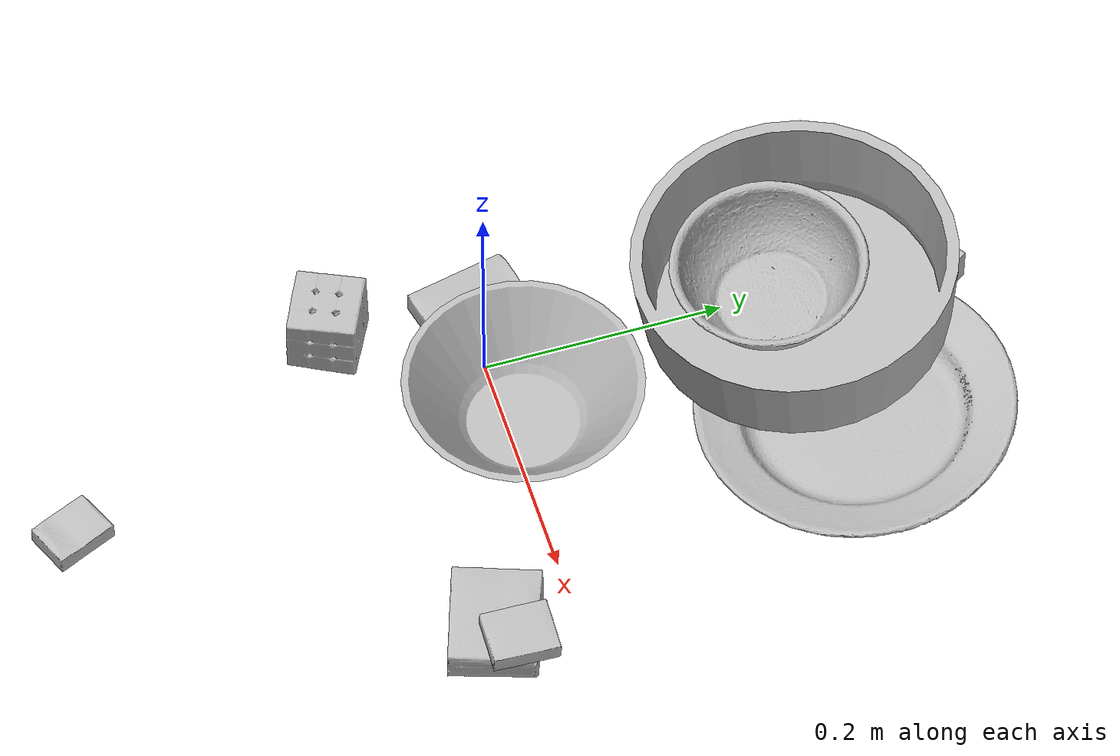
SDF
<sdf version="1.4">
  <world name="default">
    <light name="light1" type="point">
      <pose>0 0 1 0 0 0</pose>
      <diffuse>3 3 3 1</diffuse>
      <specular>3 3 3 1</specular>
    </light>
    <light name="light2" type="point">
      <pose>0 0.5 2 0 0 0</pose>
      <diffuse>1 1 1 1</diffuse>
      <specular>1 1 1 1</specular>
    </light>
    <light name="light3" type="point">
      <pose>0 0.5 2 0 0 0</pose>
      <diffuse>3 3 3 1</diffuse>
      <specular>3 3 3 1</specular>
    </light>
    <scene>
      <ambient>0.7 0.7 0.7</ambient>
    </scene>
    <model name="box1">
      <link name="link_box1">
        <collision name="default">
          <geometry>
            <mesh>
              <uri>model://jenga/collision_meshes/collision.obj</uri>
              <scale>1.0 1.0 1.0</scale>
            </mesh>
          </geometry>
          <surface>
            <friction>
              <ode>
                <mu>0.5</mu>
                <mu2>0.5</mu2>
              </ode>
            </friction>
          <contact>
        <ode>
            <max_vel>0</max_vel>
            <min_depth>0.0001</min_depth>
            <kp>1e8</kp>
        </ode>
    </contact></surface>
        </collision>
        <visual name="default">
          <geometry>
            <mesh>
              <uri>model://jenga/visual_meshes/visual.dae</uri>
              <scale>1.0 1.0 1.0</scale>
            </mesh>
          </geometry>
        </visual>
        <inertial>
          <mass>0.2830650806427002</mass>
          <pose>-2.502855807051674e-07 -0.00010250010382151231 -4.0923401684267446e-05 0.0 -7.34215461761844e-07 0.0</pose>
          <inertia>
            <ixx>7.833097e-05</ixx>
            <iyy>0.0005307686</iyy>
            <izz>0.0005666406</izz>
            <ixy>0</ixy>
            <ixz>0</ixz>
            <iyz>0</iyz>
          </inertia>
        </inertial>
      </link>
      <pose>-0.023632235825061798 0.3398517072200775 0.014995802193880081 0.0003450398150952245 2.04472453427092e-05 -2.5902560507299723</pose>
    </model>
    <model name="box11">
      <link name="link_box11">
        <collision name="default">
          <geometry>
            <mesh>
              <uri>model://cracker_box/collision_meshes/collision.obj</uri>
              <scale>0.25 0.25 0.25</scale>
            </mesh>
          </geometry>
          <surface>
            <friction>
              <ode>
                <mu>0.5</mu>
                <mu2>0.5</mu2>
              </ode>
            </friction>
          <contact>
        <ode>
            <max_vel>0</max_vel>
            <min_depth>0.0001</min_depth>
            <kp>1e8</kp>
        </ode>
    </contact></surface>
        </collision>
        <visual name="default">
          <geometry>
            <mesh>
              <uri>model://cracker_box/visual_meshes/visual.dae</uri>
              <scale>0.25 0.25 0.25</scale>
            </mesh>
          </geometry>
        </visual>
        <inertial>
          <mass>0.04137800261378288</mass>
          <pose>0.00023660347505938262 6.358561950037256e-05 -0.0004257383698131889 -0.00031620748486547713 -0.011106488669102847 0.002546795699546287</pose>
          <inertia>
            <ixx>6.577948e-06</ixx>
            <iyy>1.0861484e-05</iyy>
            <izz>1.5500336e-05</izz>
            <ixy>0</ixy>
            <ixz>0</ixz>
            <iyz>0</iyz>
          </inertia>
        </inertial>
      </link>
      <pose>0.06193311884999275 -0.361501008272171 0.009096027351915836 -0.014050579503599347 -0.005016541601754754 1.9679961413041729</pose>
    </model>
    <model name="box2">
      <link name="link_box2">
        <collision name="default">
          <geometry>
            <mesh>
              <uri>model://gelatin_box/collision_meshes/collision.obj</uri>
              <scale>1.0 1.0 1.0</scale>
            </mesh>
          </geometry>
          <surface>
            <friction>
              <ode>
                <mu>0.5</mu>
                <mu2>0.5</mu2>
              </ode>
            </friction>
          <contact>
        <ode>
            <max_vel>0</max_vel>
            <min_depth>0.0001</min_depth>
            <kp>1e8</kp>
        </ode>
    </contact></surface>
        </collision>
        <visual name="default">
          <geometry>
            <mesh>
              <uri>model://gelatin_box/visual_meshes/visual.dae</uri>
              <scale>1.0 1.0 1.0</scale>
            </mesh>
          </geometry>
        </visual>
        <inertial>
          <mass>0.22900472581386566</mass>
          <pose>0.000431961816502735 0.00011156871914863586 -0.0003640321083366871 -0.001050372089182411 -0.004755818223717792 0.016440559471606643</pose>
          <inertia>
            <ixx>0.00016165864</ixx>
            <iyy>0.00011547193</iyy>
            <izz>0.00024608054</izz>
            <ixy>0</ixy>
            <ixz>0</ixz>
            <iyz>0</iyz>
          </inertia>
        </inertial>
      </link>
      <pose>0.24629028141498566 -0.06655800342559814 0.01516831573098898 0.005597462855725351 -0.007304557694946576 1.2197957577293652</pose>
    </model>
    <model name="box21">
      <link name="link_box21">
        <collision name="default">
          <geometry>
            <mesh>
              <uri>model://sugar_box/collision_meshes/collision.obj</uri>
              <scale>0.5 0.5 0.5</scale>
            </mesh>
          </geometry>
          <surface>
            <friction>
              <ode>
                <mu>0.5</mu>
                <mu2>0.5</mu2>
              </ode>
            </friction>
          <contact>
        <ode>
            <max_vel>0</max_vel>
            <min_depth>0.0001</min_depth>
            <kp>1e8</kp>
        </ode>
    </contact></surface>
        </collision>
        <visual name="default">
          <geometry>
            <mesh>
              <uri>model://sugar_box/visual_meshes/visual.dae</uri>
              <scale>0.5 0.5 0.5</scale>
            </mesh>
          </geometry>
        </visual>
        <inertial>
          <mass>0.12271630764007568</mass>
          <pose>0.0005171863595023751 1.924554817378521e-05 -0.00018182404164690524 -0.00040462595111886014 0.0010506636380741379 0.0026153785562511135</pose>
          <inertia>
            <ixx>2.5561721e-05</ixx>
            <iyy>8.262075e-05</iyy>
            <izz>9.890688e-05</izz>
            <ixy>0</ixy>
            <ixz>0</ixz>
            <iyz>0</iyz>
          </inertia>
        </inertial>
      </link>
      <pose>-0.06065485253930092 0.0041307187639176846 0.011399311013519764 0.0007752054400998208 -0.023432578979858197 -1.3462767954312909</pose>
    </model>
    <model name="box3">
      <link name="link_box3">
        <collision name="default">
          <geometry>
            <mesh>
              <uri>model://rubiks_cube/collision_meshes/collision.obj</uri>
              <scale>1.0 1.0 1.0</scale>
            </mesh>
          </geometry>
          <surface>
            <friction>
              <ode>
                <mu>0.5</mu>
                <mu2>0.5</mu2>
              </ode>
            </friction>
          <contact>
        <ode>
            <max_vel>0</max_vel>
            <min_depth>0.0001</min_depth>
            <kp>1e8</kp>
        </ode>
    </contact></surface>
        </collision>
        <visual name="default">
          <geometry>
            <mesh>
              <uri>model://rubiks_cube/visual_meshes/visual.dae</uri>
              <scale>1.0 1.0 1.0</scale>
            </mesh>
          </geometry>
        </visual>
        <inertial>
          <mass>0.16665811836719513</mass>
          <pose>2.6721039830590598e-05 5.256966323941015e-05 -7.264316082000732e-06 -0.05467166844566422 -0.0981397083583286 -0.034457090447706985</pose>
          <inertia>
            <ixx>9.20898e-05</ixx>
            <iyy>9.166034e-05</iyy>
            <izz>9.285292e-05</izz>
            <ixy>0</ixy>
            <ixz>0</ixz>
            <iyz>0</iyz>
          </inertia>
        </inertial>
      </link>
      <pose>-0.06112504377961159 -0.11448453366756439 0.02867893874645233 -5.091263653825798e-06 -1.802098473855213e-06 1.1269691007089666</pose>
    </model>
    <model name="box31">
      <link name="link_box31">
        <collision name="default">
          <geometry>
            <mesh>
              <uri>model://pudding_box/collision_meshes/collision.obj</uri>
              <scale>0.5 0.5 0.5</scale>
            </mesh>
          </geometry>
          <surface>
            <friction>
              <ode>
                <mu>0.5</mu>
                <mu2>0.5</mu2>
              </ode>
            </friction>
          <contact>
        <ode>
            <max_vel>0</max_vel>
            <min_depth>0.0001</min_depth>
            <kp>1e8</kp>
        </ode>
    </contact></surface>
        </collision>
        <visual name="default">
          <geometry>
            <mesh>
              <uri>model://pudding_box/visual_meshes/visual.dae</uri>
              <scale>0.5 0.5 0.5</scale>
            </mesh>
          </geometry>
        </visual>
        <inertial>
          <mass>0.023591291159391403</mass>
          <pose>0.00024474109522998333 0.00040339428232982755 -0.0002594413817860186 0.00521310040348307 -0.006603797312523218 0.020079827030686108</pose>
          <inertia>
            <ixx>6.667184e-06</ixx>
            <iyy>4.4857293e-06</iyy>
            <izz>9.845841e-06</izz>
            <ixy>0</ixy>
            <ixz>0</ixz>
            <iyz>0</iyz>
          </inertia>
        </inertial>
      </link>
      <pose>0.27860239148139954 -0.05537021905183792 0.03904851898550987 -0.00011265256712948068 -0.04806708325112526 3.1123447152032018</pose>
    </model>
    <model name="plate1">
      <link name="link_plate1">
        <collision name="default">
          <geometry>
            <mesh>
              <uri>model://plate/collision_meshes/collision.obj</uri>
              <scale>1.0 1.0 1.0</scale>
            </mesh>
          </geometry>
          <surface>
            <friction>
              <ode>
                <mu>0.5</mu>
                <mu2>0.5</mu2>
              </ode>
            </friction>
          <contact>
        <ode>
            <max_vel>0</max_vel>
            <min_depth>0.0001</min_depth>
            <kp>1e8</kp>
        </ode>
    </contact></surface>
        </collision>
        <visual name="default">
          <geometry>
            <mesh>
              <uri>model://plate/visual_meshes/visual.dae</uri>
              <scale>1.0 1.0 1.0</scale>
            </mesh>
          </geometry>
        </visual>
        <inertial>
          <mass>0.2114637792110443</mass>
          <pose>-0.0006044656038284302 0.0002782588708214462 -0.0010561993112787604 0.002218744002621918 -0.003225513006599694 0.45262307488796183</pose>
          <inertia>
            <ixx>0.0009892316</ixx>
            <iyy>0.0009797702</iyy>
            <izz>0.0019347895</izz>
            <ixy>0</ixy>
            <ixz>0</ixz>
            <iyz>0</iyz>
          </inertia>
        </inertial>
      </link>
      <pose>0.1387016624212265 0.26925718784332275 0.01850304938852787 0.05548427587440862 0.024913653364976297 -0.6282009407103888</pose>
    </model>
    <model name="bowl1">
      <link name="link_bowl1">
        <collision name="default">
          <geometry>
            <mesh>
              <uri>model://bowl_a/collision_meshes/collision.obj</uri>
              <scale>1.0 1.0 1.0</scale>
            </mesh>
          </geometry>
          <surface>
            <friction>
              <ode>
                <mu>0.5</mu>
                <mu2>0.5</mu2>
              </ode>
            </friction>
          <contact>
        <ode>
            <max_vel>0</max_vel>
            <min_depth>0.0001</min_depth>
            <kp>1e8</kp>
        </ode>
    </contact></surface>
        </collision>
        <visual name="default">
          <geometry>
            <mesh>
              <uri>model://bowl_a/visual_meshes/visual.dae</uri>
              <scale>1.0 1.0 1.0</scale>
            </mesh>
          </geometry>
        </visual>
        <inertial>
          <mass>0.48499906063079834</mass>
          <pose>0.00027867438620887697 4.731262743007392e-05 -0.0013765298062935472 -0.0009805334386135593 -0.0010938262367740986 -0.19123808511586568</pose>
          <inertia>
            <ixx>0.0013808149</ixx>
            <iyy>0.0013892918</iyy>
            <izz>0.0024558324</izz>
            <ixy>0</ixy>
            <ixz>0</ixz>
            <iyz>0</iyz>
          </inertia>
        </inertial>
      </link>
      <pose>0.06122000887989998 0.01386538241058588 0.030382683500647545 -1.5503259592225937e-05 9.26827054925256e-06 -2.681956584953703</pose>
    </model>
    <model name="plate2">
      <link name="link_plate2">
        <collision name="default">
          <geometry>
            <mesh>
              <uri>model://pan_tefal/collision_meshes/collision.obj</uri>
              <scale>1.0 1.0 1.0</scale>
            </mesh>
          </geometry>
          <surface>
            <friction>
              <ode>
                <mu>0.5</mu>
                <mu2>0.5</mu2>
              </ode>
            </friction>
          <contact>
        <ode>
            <max_vel>0</max_vel>
            <min_depth>0.0001</min_depth>
            <kp>1e8</kp>
        </ode>
    </contact></surface>
        </collision>
        <visual name="default">
          <geometry>
            <mesh>
              <uri>model://pan_tefal/visual_meshes/visual.dae</uri>
              <scale>1.0 1.0 1.0</scale>
            </mesh>
          </geometry>
        </visual>
        <inertial>
          <mass>1.510846495628357</mass>
          <pose>-0.00018002149590756744 3.279069278505631e-05 -0.008514934219419956 0.0008190286460061649 -0.00033014112223844094 -0.3318560039733936</pose>
          <inertia>
            <ixx>0.010429303</ixx>
            <iyy>0.010496541</iyy>
            <izz>0.01919834</izz>
            <ixy>0</ixy>
            <ixz>0</ixz>
            <iyz>0</iyz>
          </inertia>
        </inertial>
      </link>
      <pose>0.037481389939785004 0.2508712112903595 0.06667232513427734 0.06485355821746419 -0.01045242923228943 0.06389634345445029</pose>
    </model>
    <model name="bowl2">
      <link name="link_bowl2">
        <collision name="default">
          <geometry>
            <mesh>
              <uri>model://bowl/collision_meshes/collision.obj</uri>
              <scale>1.0 1.0 1.0</scale>
            </mesh>
          </geometry>
          <surface>
            <friction>
              <ode>
                <mu>0.5</mu>
                <mu2>0.5</mu2>
              </ode>
            </friction>
          <contact>
        <ode>
            <max_vel>0</max_vel>
            <min_depth>0.0001</min_depth>
            <kp>1e8</kp>
        </ode>
    </contact></surface>
        </collision>
        <visual name="default">
          <geometry>
            <mesh>
              <uri>model://bowl/visual_meshes/visual.dae</uri>
              <scale>1.0 1.0 1.0</scale>
            </mesh>
          </geometry>
        </visual>
        <inertial>
          <mass>0.12714597582817078</mass>
          <pose>0.0002044505235971883 -0.0010302012087777257 -0.0008042659610509872 -0.015764101160635133 0.01454679544325816 0.7140405339594252</pose>
          <inertia>
            <ixx>0.0002920644</ixx>
            <iyy>0.00028553858</iyy>
            <izz>0.0004913528</izz>
            <ixy>0</ixy>
            <ixz>0</ixz>
            <iyz>0</iyz>
          </inertia>
        </inertial>
      </link>
      <pose>0.028169646859169006 0.23214364051818848 0.06282129138708115 0.04436011917707245 0.05190411196597326 -0.9594246787613915</pose>
    </model>
  <physics type="ode">
      <max_contacts>50</max_contacts>
      <ode>
        <solver>
          <type>quick</type>
          <iters>75</iters>
        </solver>
        <constraints>
          <contact_max_correcting_vel>0</contact_max_correcting_vel>
          <contact_surface_layer>0</contact_surface_layer>
        </constraints>
      </ode>
    </physics></world>
</sdf>
